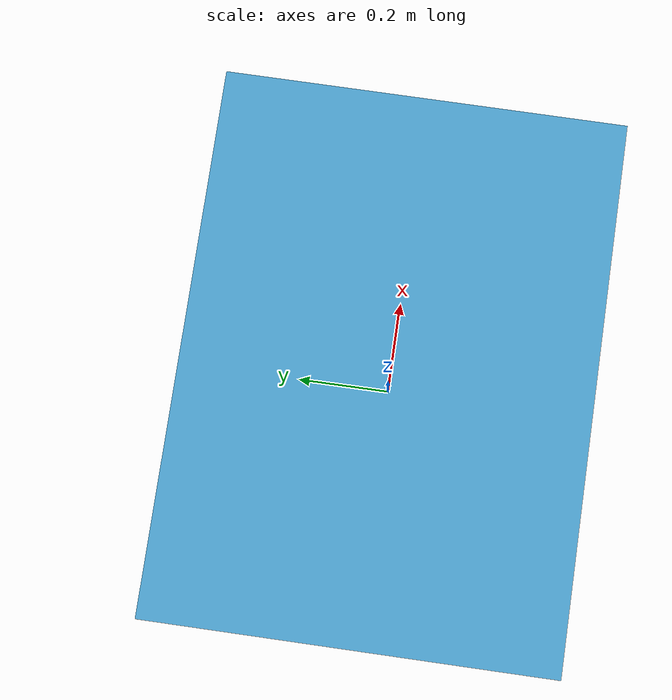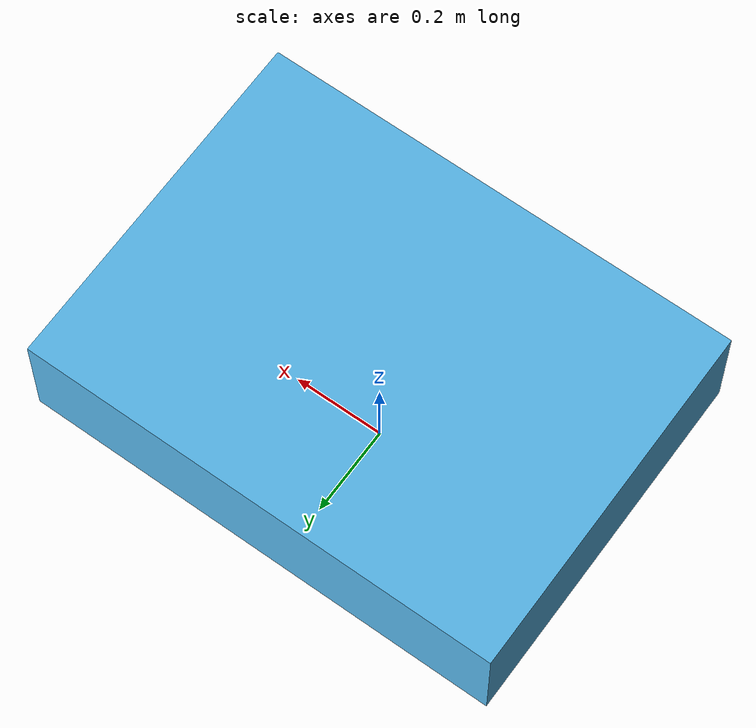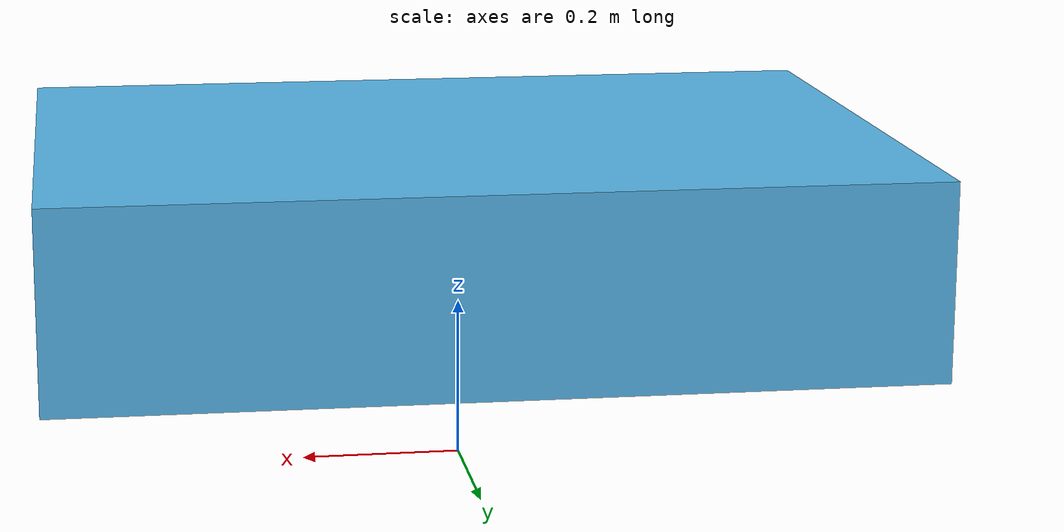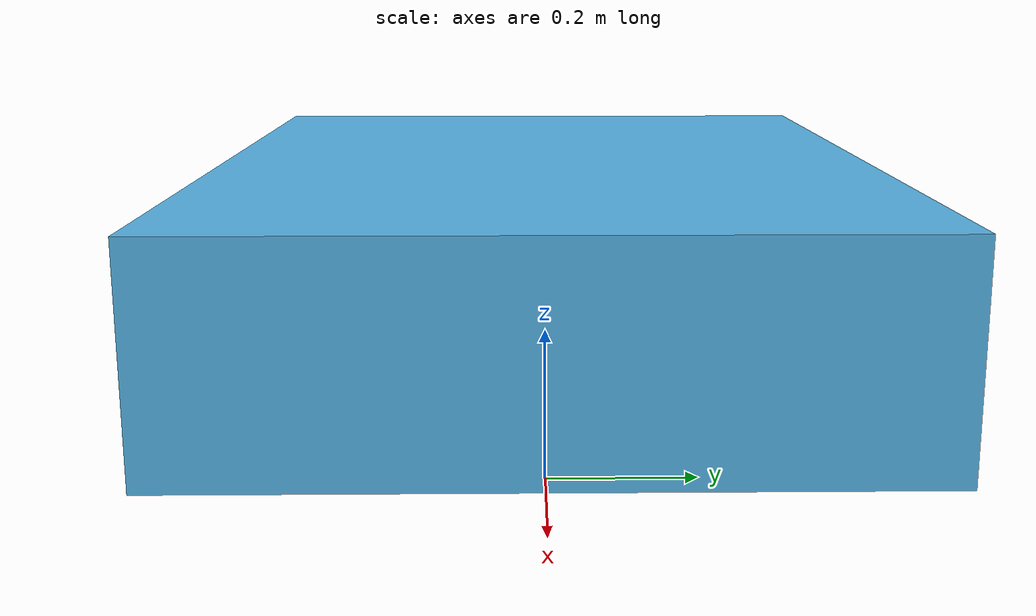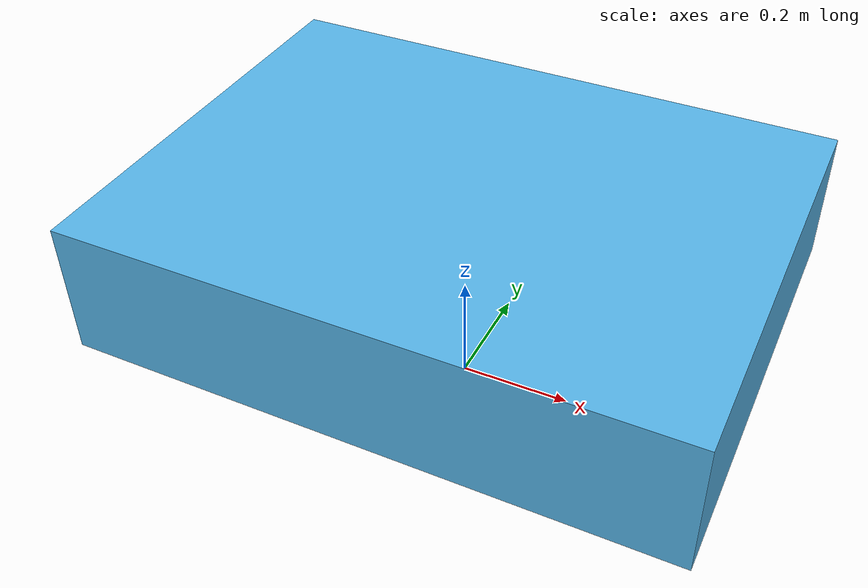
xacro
<?xml version="1.0"?>

<robot xmlns:xacro="http://www.ros.org/wiki/xacro">

  <!-- EVRENOS simplified physical chassis -->

  <xacro:property name="vehicle_scale" value="1.00"/>

  <xacro:property name="base_length" value="${1.05 * vehicle_scale}"/>
  <xacro:property name="base_width"  value="${0.78 * vehicle_scale}"/>
  <xacro:property name="base_height" value="${0.24 * vehicle_scale}"/>

  <xacro:property name="base_ground_clearance" value="${0.18 * vehicle_scale}"/>

  <!-- 84 kg chassis + 4 x 4 kg wheel ~= 100 kg -->
  <xacro:property name="base_mass" value="${84.0 * vehicle_scale ** 3}"/>

  <link name="base_footprint"/>

  <link name="base_link">

    <!-- Structural chassis -->
    <visual>
      <origin xyz="0 0 0" rpy="0 0 0"/>

      <geometry>
        <box size="${base_length} ${base_width} ${base_height}"/>
      </geometry>

      <material name="evrenos_chassis"/>
    </visual>

    <!-- Simplified physical collision -->
    <collision>
      <origin xyz="0 0 0" rpy="0 0 0"/>

      <geometry>
        <box size="${base_length} ${base_width} ${base_height}"/>
      </geometry>
    </collision>

    <inertial>
      <origin xyz="0 0 0" rpy="0 0 0"/>

      <mass value="${base_mass}"/>

      <inertia
        ixx="${base_mass * (base_width * base_width + base_height * base_height) / 12.0}"
        ixy="0.0"
        ixz="0.0"
        iyy="${base_mass * (base_length * base_length + base_height * base_height) / 12.0}"
        iyz="0.0"
        izz="${base_mass * (base_length * base_length + base_width * base_width) / 12.0}"/>
    </inertial>

  </link>

  <joint name="base_footprint_joint" type="fixed">

    <parent link="base_footprint"/>
    <child link="base_link"/>

    <origin
      xyz="0 0 ${base_ground_clearance + base_height / 2.0}"
      rpy="0 0 0"/>

  </joint>

</robot>
